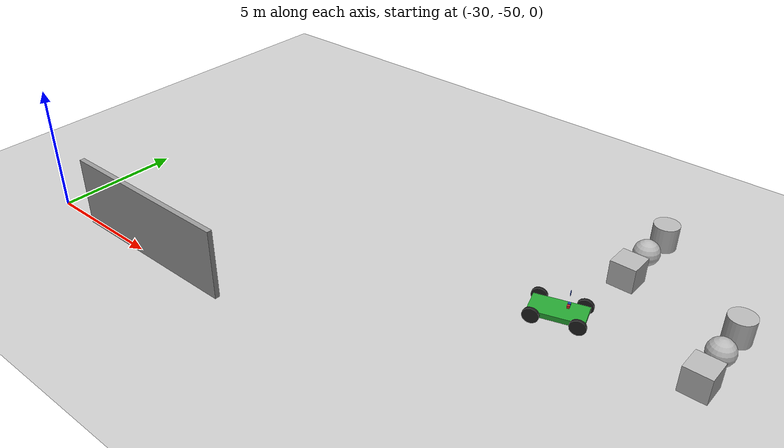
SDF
<sdf version="1.7">
 <world name="default">
  <model name="ground_plane">
   <static>1</static>
   <link name="link">
    <collision name="collision">
     <geometry><plane><normal>0 0 1</normal><size>100 100</size></plane></geometry>
     <surface><friction><ode><mu>100</mu><mu2>50</mu2></ode></friction></surface>
    </collision>
    <visual name="visual">
     <cast_shadows>0</cast_shadows>
     <geometry><plane><normal>0 0 1</normal><size>100 100</size></plane></geometry>
     <material>
      <script><uri>file://media/materials/scripts/gazebo.material</uri><name>Gazebo/Grey</name></script>
     </material>
    </visual>
   </link>
  </model>
  <model name="grey_wall_0">
   <static>1</static>
   <link name="link">
    <pose>0 0 1.4 0 -0 0</pose>
    <collision name="collision"><geometry><box><size>7.5 0.2 2.8</size></box></geometry></collision>
    <visual name="visual">
     <cast_shadows>0</cast_shadows>
     <geometry><box><size>7.5 0.2 2.8</size></box></geometry>
     <material>
      <script>
       <uri>model://grey_wall/materials/scripts</uri>
       <uri>model://grey_wall/materials/textures</uri>
       <name>vrc/grey_wall</name>
      </script>
     </material>
    </visual>
   </link>
   <pose>-24.3097 -50.0185 0 0 -0 0</pose>
  </model>
  <model name="textured_shapes_clone_0">
   <pose>-5.9925 -41.7909 0.509991 -3e-06 -2e-06 0</pose>
   <link name="box">
    <pose>0 -1.5 0 0 -0 0</pose>
    <collision name="collision"><geometry><box><size>1 1 1</size></box></geometry></collision>
    <visual name="visual">
     <geometry><box><size>1 1 1</size></box></geometry>
     <material>
      <script>
       <uri>model://textured_shapes/materials/scripts</uri>
       <uri>model://textured_shapes/materials/textures</uri>
       <name>TexturedShape/Squares</name>
      </script>
     </material>
    </visual>
    <inertial>
     <inertia><ixx>1</ixx><ixy>0</ixy><ixz>0</ixz><iyy>1</iyy><iyz>0</iyz><izz>1</izz></inertia>
     <mass>1</mass>
    </inertial>
   </link>
   <link name="sphere">
    <collision name="collision"><geometry><sphere><radius>0.5</radius></sphere></geometry></collision>
    <visual name="visual">
     <geometry><sphere><radius>0.5</radius></sphere></geometry>
     <material>
      <script>
       <uri>model://textured_shapes/materials/scripts</uri>
       <uri>model://textured_shapes/materials/textures</uri>
       <name>TexturedShape/Squares</name>
      </script>
     </material>
    </visual>
    <inertial>
     <inertia><ixx>1</ixx><ixy>0</ixy><ixz>0</ixz><iyy>1</iyy><iyz>0</iyz><izz>1</izz></inertia>
     <mass>1</mass>
    </inertial>
   </link>
   <link name="cylinder">
    <pose>0 1.5 0 0 -0 0</pose>
    <collision name="collision">
     <geometry><cylinder><radius>0.5</radius><length>1</length></cylinder></geometry>
    </collision>
    <visual name="visual">
     <geometry><cylinder><radius>0.5</radius><length>1</length></cylinder></geometry>
     <material>
      <script>
       <uri>model://textured_shapes/materials/scripts</uri>
       <uri>model://textured_shapes/materials/textures</uri>
       <name>TexturedShape/Squares</name>
      </script>
     </material>
    </visual>
    <inertial>
     <inertia><ixx>1</ixx><ixy>0</ixy><ixz>0</ixz><iyy>1</iyy><iyz>0</iyz><izz>1</izz></inertia>
     <mass>1</mass>
    </inertial>
   </link>
  </model>
  <model name="textured_shapes_clone_1">
   <pose>-10.2175 -38.3186 0.509991 -3e-06 -2e-06 0</pose>
   <link name="box">
    <pose>0 -1.5 0 0 -0 0</pose>
    <collision name="collision"><geometry><box><size>1 1 1</size></box></geometry></collision>
    <visual name="visual">
     <geometry><box><size>1 1 1</size></box></geometry>
     <material>
      <script>
       <uri>model://textured_shapes/materials/scripts</uri>
       <uri>model://textured_shapes/materials/textures</uri>
       <name>TexturedShape/Squares</name>
      </script>
     </material>
    </visual>
    <inertial>
     <inertia><ixx>1</ixx><ixy>0</ixy><ixz>0</ixz><iyy>1</iyy><iyz>0</iyz><izz>1</izz></inertia>
     <mass>1</mass>
    </inertial>
   </link>
   <link name="sphere">
    <collision name="collision"><geometry><sphere><radius>0.5</radius></sphere></geometry></collision>
    <visual name="visual">
     <geometry><sphere><radius>0.5</radius></sphere></geometry>
     <material>
      <script>
       <uri>model://textured_shapes/materials/scripts</uri>
       <uri>model://textured_shapes/materials/textures</uri>
       <name>TexturedShape/Squares</name>
      </script>
     </material>
    </visual>
    <inertial>
     <inertia><ixx>1</ixx><ixy>0</ixy><ixz>0</ixz><iyy>1</iyy><iyz>0</iyz><izz>1</izz></inertia>
     <mass>1</mass>
    </inertial>
   </link>
   <link name="cylinder">
    <pose>0 1.5 0 0 -0 0</pose>
    <collision name="collision">
     <geometry><cylinder><radius>0.5</radius><length>1</length></cylinder></geometry>
    </collision>
    <visual name="visual">
     <geometry><cylinder><radius>0.5</radius><length>1</length></cylinder></geometry>
     <material>
      <script>
       <uri>model://textured_shapes/materials/scripts</uri>
       <uri>model://textured_shapes/materials/textures</uri>
       <name>TexturedShape/Squares</name>
      </script>
     </material>
    </visual>
    <inertial>
     <inertia><ixx>1</ixx><ixy>0</ixy><ixz>0</ixz><iyy>1</iyy><iyz>0</iyz><izz>1</izz></inertia>
     <mass>1</mass>
    </inertial>
   </link>
  </model>
  <model name="car_0">
   <link name="chassis">
    <pose>0 0 0.3 0 -0 0</pose>
    <collision name="collision"><geometry><box><size>2 1 0.2</size></box></geometry></collision>
    <visual name="visual">
     <geometry><box><size>2 1 0.2</size></box></geometry>
     <material>
      <script><uri>file://media/materials/scripts/gazebo.material</uri><name>Gazebo/Green</name></script>
     </material>
    </visual>
    <inertial>
     <inertia><ixx>1</ixx><ixy>0</ixy><ixz>0</ixz><iyy>1</iyy><iyz>0</iyz><izz>1</izz></inertia>
     <mass>1</mass>
    </inertial>
   </link>
   <link name="front_left_wheel">
    <pose>0.8 0.6 0.3 -0 1.5707 1.5707</pose>
    <collision name="collision">
     <geometry><cylinder><radius>0.3</radius><length>0.1</length></cylinder></geometry>
    </collision>
    <visual name="visual">
     <geometry><cylinder><radius>0.3</radius><length>0.1</length></cylinder></geometry>
     <material>
      <script><uri>file://media/materials/scripts/gazebo.material</uri><name>Gazebo/Black</name></script>
     </material>
    </visual>
    <inertial>
     <inertia><ixx>1</ixx><ixy>0</ixy><ixz>0</ixz><iyy>1</iyy><iyz>0</iyz><izz>1</izz></inertia>
     <mass>1</mass>
    </inertial>
   </link>
   <link name="front_right_wheel">
    <pose>0.8 -0.6 0.3 -0 1.5707 1.5707</pose>
    <collision name="collision">
     <geometry><cylinder><radius>0.3</radius><length>0.1</length></cylinder></geometry>
    </collision>
    <visual name="visual">
     <geometry><cylinder><radius>0.3</radius><length>0.1</length></cylinder></geometry>
     <material>
      <script><uri>file://media/materials/scripts/gazebo.material</uri><name>Gazebo/Black</name></script>
     </material>
    </visual>
    <inertial>
     <inertia><ixx>1</ixx><ixy>0</ixy><ixz>0</ixz><iyy>1</iyy><iyz>0</iyz><izz>1</izz></inertia>
     <mass>1</mass>
    </inertial>
   </link>
   <link name="back_right_wheel">
    <pose>-0.8 -0.6 0.3 -0 1.5707 1.5707</pose>
    <collision name="collision">
     <geometry><cylinder><radius>0.3</radius><length>0.1</length></cylinder></geometry>
    </collision>
    <visual name="visual">
     <geometry><cylinder><radius>0.3</radius><length>0.1</length></cylinder></geometry>
     <material>
      <script><uri>file://media/materials/scripts/gazebo.material</uri><name>Gazebo/Black</name></script>
     </material>
    </visual>
    <inertial>
     <inertia><ixx>1</ixx><ixy>0</ixy><ixz>0</ixz><iyy>1</iyy><iyz>0</iyz><izz>1</izz></inertia>
     <mass>1</mass>
    </inertial>
   </link>
   <link name="back_left_wheel">
    <pose>-0.8 0.6 0.3 -0 1.5707 1.5707</pose>
    <collision name="collision">
     <geometry><cylinder><radius>0.3</radius><length>0.1</length></cylinder></geometry>
    </collision>
    <visual name="visual">
     <geometry><cylinder><radius>0.3</radius><length>0.1</length></cylinder></geometry>
     <material>
      <script><uri>file://media/materials/scripts/gazebo.material</uri><name>Gazebo/Black</name></script>
     </material>
    </visual>
    <inertial>
     <inertia><ixx>1</ixx><ixy>0</ixy><ixz>0</ixz><iyy>1</iyy><iyz>0</iyz><izz>1</izz></inertia>
     <mass>1</mass>
    </inertial>
   </link>
   <link name="gas_pedal">
    <pose>0.3 0.1 0.5 0 -0 0</pose>
    <collision name="collision"><geometry><box><size>0.1 0.1 0.1</size></box></geometry></collision>
    <visual name="visual">
     <geometry><box><size>0.1 0.1 0.1</size></box></geometry>
     <material>
      <script><uri>file://media/materials/scripts/gazebo.material</uri><name>Gazebo/Red</name></script>
     </material>
    </visual>
    <inertial>
     <inertia><ixx>1</ixx><ixy>0</ixy><ixz>0</ixz><iyy>1</iyy><iyz>0</iyz><izz>1</izz></inertia>
     <mass>1</mass>
    </inertial>
   </link>
   <link name="brake_pedal">
    <pose>0.3 0.25 0.5 0 -0 0</pose>
    <collision name="collision"><geometry><box><size>0.1 0.1 0.1</size></box></geometry></collision>
    <visual name="visual">
     <geometry><box><size>0.1 0.1 0.1</size></box></geometry>
     <material>
      <script><uri>file://media/materials/scripts/gazebo.material</uri><name>Gazebo/Blue</name></script>
     </material>
    </visual>
    <inertial>
     <inertia><ixx>1</ixx><ixy>0</ixy><ixz>0</ixz><iyy>1</iyy><iyz>0</iyz><izz>1</izz></inertia>
     <mass>1</mass>
    </inertial>
   </link>
   <link name="steering_wheel">
    <pose>0.3 0.2 1 0 1.5707 0</pose>
    <collision name="collision">
     <geometry><cylinder><radius>0.1</radius><length>0.01</length></cylinder></geometry>
    </collision>
    <visual name="visual">
     <geometry><cylinder><radius>0.1</radius><length>0.01</length></cylinder></geometry>
     <material>
      <script><uri>file://media/materials/scripts/gazebo.material</uri><name>Gazebo/Blue</name></script>
     </material>
    </visual>
    <inertial>
     <inertia><ixx>1</ixx><ixy>0</ixy><ixz>0</ixz><iyy>1</iyy><iyz>0</iyz><izz>1</izz></inertia>
     <mass>1</mass>
    </inertial>
   </link>
   <joint name="gas_joint" type="prismatic">
    <parent>chassis</parent>
    <child>gas_pedal</child>
    <axis>
     <xyz expressed_in="__model__">1 0 0</xyz>
     <limit><lower>0</lower><upper>0.2</upper></limit>
     <dynamics><spring_reference>0</spring_reference><spring_stiffness>0</spring_stiffness></dynamics>
    </axis>
   </joint>
   <joint name="brake_joint" type="prismatic">
    <parent>chassis</parent>
    <child>brake_pedal</child>
    <axis>
     <xyz expressed_in="__model__">1 0 0</xyz>
     <limit><lower>0</lower><upper>0.2</upper></limit>
     <dynamics><spring_reference>0</spring_reference><spring_stiffness>0</spring_stiffness></dynamics>
    </axis>
   </joint>
   <joint name="steering_joint" type="revolute">
    <parent>chassis</parent>
    <child>steering_wheel</child>
    <axis>
     <xyz expressed_in="__model__">1 0 0</xyz>
     <limit><lower>-7.853</lower><upper>7.853</upper></limit>
     <dynamics><spring_reference>0</spring_reference><spring_stiffness>0</spring_stiffness></dynamics>
    </axis>
   </joint>
   <joint name="front_left_joint" type="revolute2">
    <parent>chassis</parent>
    <child>front_left_wheel</child>
    <axis>
     <xyz expressed_in="__model__">0 0 1</xyz>
     <limit><lower>8.76644e-06</lower><upper>8.76644e-06</upper></limit>
     <dynamics><spring_reference>0</spring_reference><spring_stiffness>0</spring_stiffness></dynamics>
    </axis>
    <axis2>
     <xyz expressed_in="__model__">0 1 0</xyz>
     <limit><upper>1e+16</upper><lower>-1e+16</lower></limit>
     <dynamics><spring_reference>0</spring_reference><spring_stiffness>0</spring_stiffness></dynamics>
    </axis2>
    <physics><ode><limit><cfm>0</cfm><erp>0.9</erp></limit></ode></physics>
   </joint>
   <joint name="front_right_joint" type="revolute2">
    <parent>chassis</parent>
    <child>front_right_wheel</child>
    <axis>
     <xyz expressed_in="__model__">0 0 1</xyz>
     <limit><lower>8.76644e-06</lower><upper>8.76644e-06</upper></limit>
     <dynamics><spring_reference>0</spring_reference><spring_stiffness>0</spring_stiffness></dynamics>
    </axis>
    <axis2>
     <xyz expressed_in="__model__">0 1 0</xyz>
     <limit><upper>1e+16</upper><lower>-1e+16</lower></limit>
     <dynamics><spring_reference>0</spring_reference><spring_stiffness>0</spring_stiffness></dynamics>
    </axis2>
    <physics><ode><limit><cfm>0</cfm><erp>0.9</erp></limit></ode></physics>
   </joint>
   <joint name="back_right_joint" type="revolute2">
    <parent>chassis</parent>
    <child>back_right_wheel</child>
    <axis>
     <xyz expressed_in="__model__">0 0 1</xyz>
     <limit><lower>0</lower><upper>0</upper></limit>
     <dynamics><spring_reference>0</spring_reference><spring_stiffness>0</spring_stiffness></dynamics>
    </axis>
    <axis2>
     <xyz expressed_in="__model__">0 1 0</xyz>
     <limit><upper>1e+16</upper><lower>-1e+16</lower></limit>
     <dynamics><spring_reference>0</spring_reference><spring_stiffness>0</spring_stiffness></dynamics>
    </axis2>
    <physics><ode><limit><cfm>0</cfm><erp>0.9</erp></limit></ode></physics>
   </joint>
   <joint name="back_left_joint" type="revolute2">
    <parent>chassis</parent>
    <child>back_left_wheel</child>
    <axis>
     <xyz expressed_in="__model__">0 0 1</xyz>
     <limit><lower>0</lower><upper>0</upper></limit>
     <dynamics><spring_reference>0</spring_reference><spring_stiffness>0</spring_stiffness></dynamics>
    </axis>
    <axis2>
     <xyz expressed_in="__model__">0 1 0</xyz>
     <limit><upper>1e+16</upper><lower>-1e+16</lower></limit>
     <dynamics><spring_reference>0</spring_reference><spring_stiffness>0</spring_stiffness></dynamics>
    </axis2>
    <physics><ode><limit><cfm>0</cfm><erp>0.9</erp></limit></ode></physics>
   </joint>
   <plugin name="vehicle" filename="libVehiclePlugin.so">
    <front_left>front_left_joint</front_left>
    <front_right>front_right_joint</front_right>
    <back_left>back_left_joint</back_left>
    <back_right>back_right_joint</back_right>
    <gas>gas_joint</gas>
    <brake>brake_joint</brake>
    <steering>steering_joint</steering>
    <front_power>10</front_power>
    <rear_power>10</rear_power>
    <tire_angle_range>0.5</tire_angle_range>
    <max_speed>10</max_speed>
    <aero_load>0.1</aero_load>
   </plugin>
   <pose>-11.0249 -43.1535 0.010009 -3e-06 1e-06 0.302079</pose>
  </model>
 </world>
</sdf>
